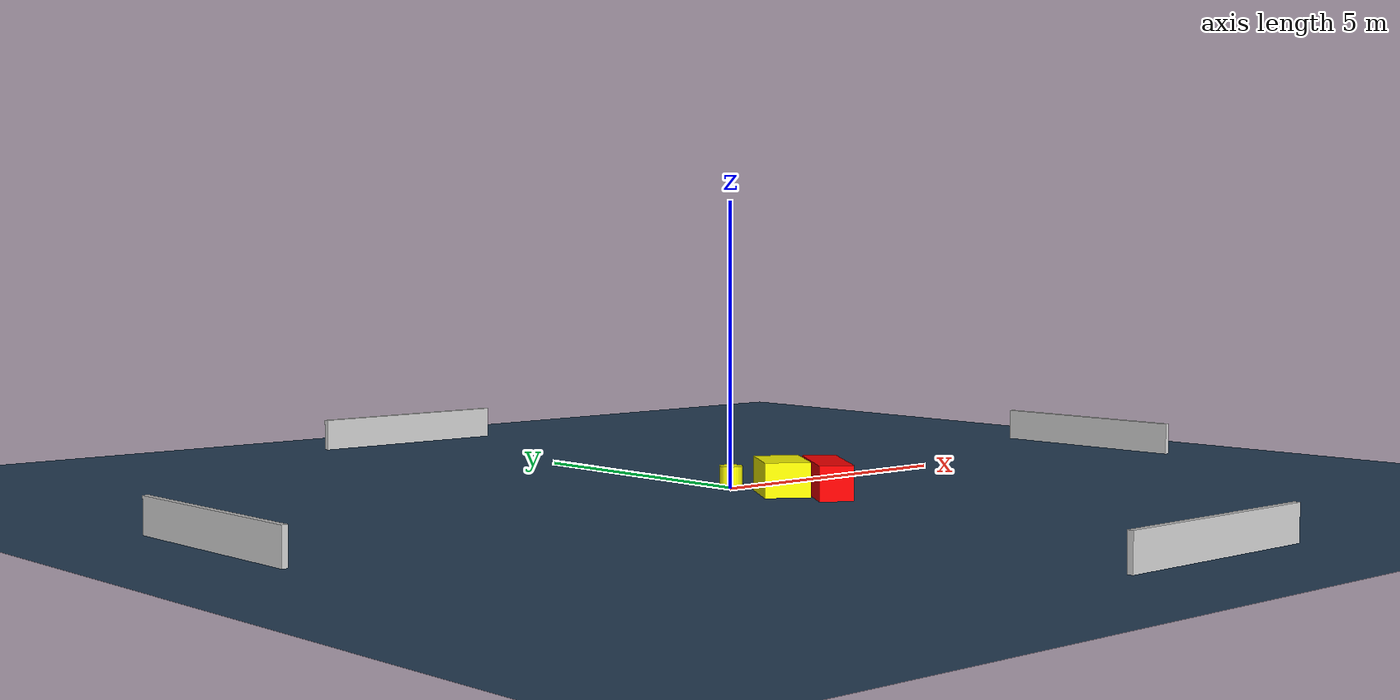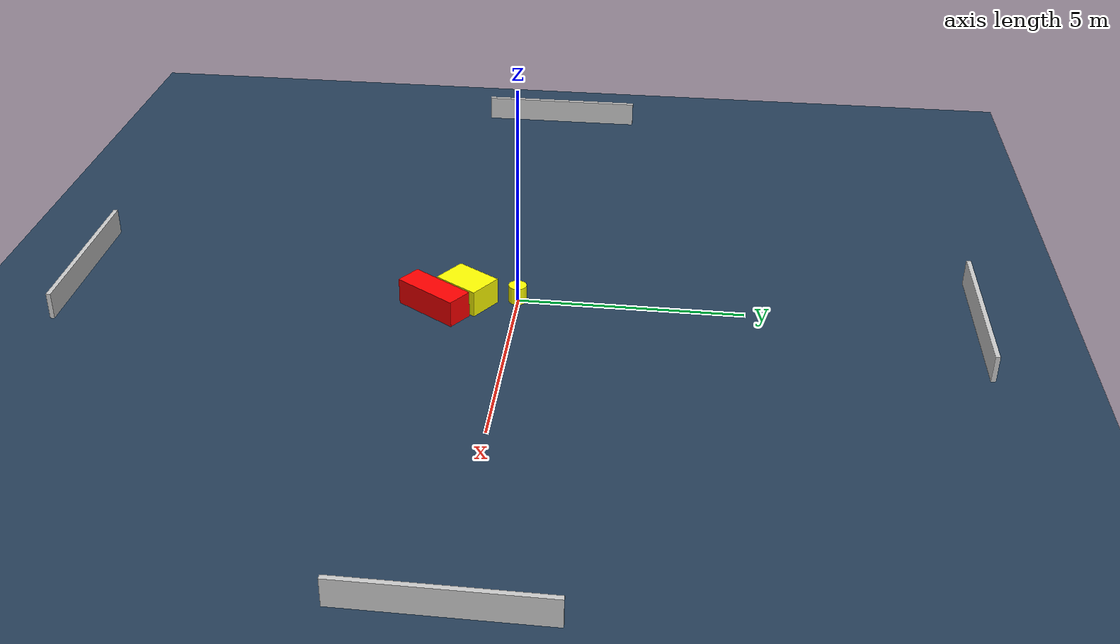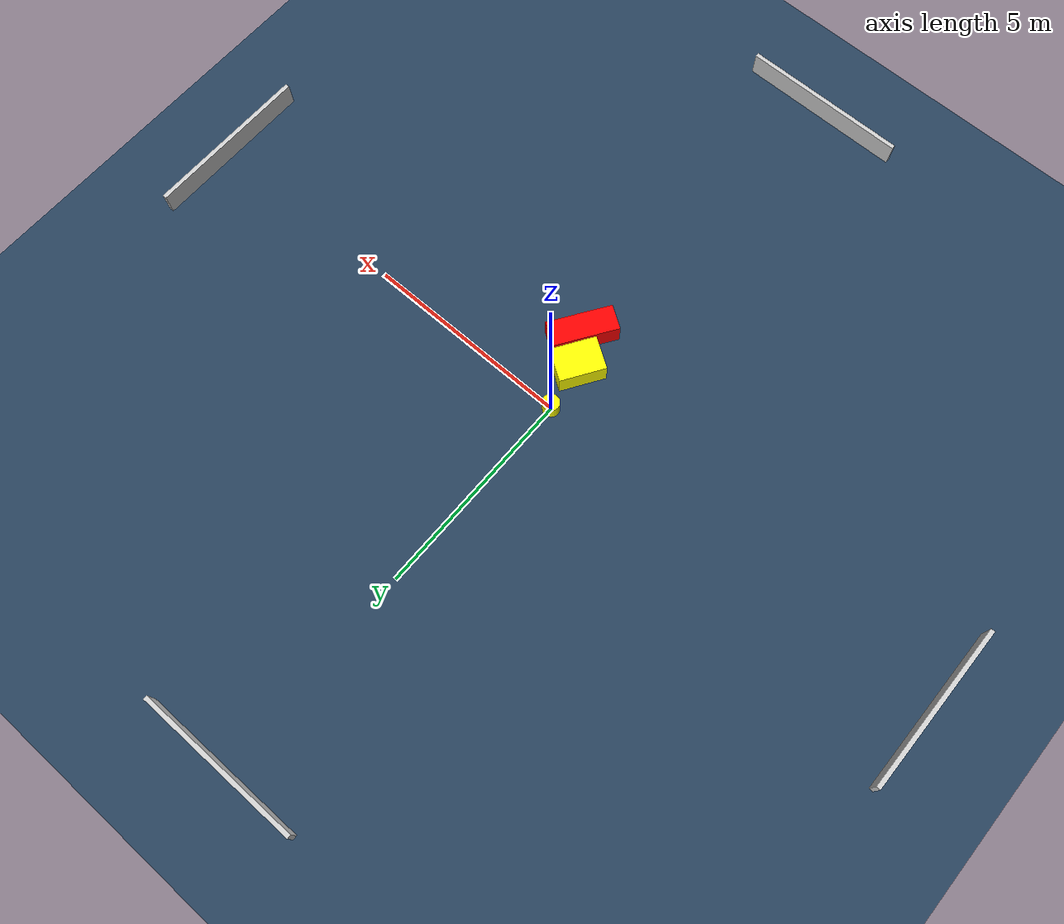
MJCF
<?xml version="1.0" ?>
<mujoco model="generated_environment">
  <option timestep="0.01" integrator="RK4" cone="elliptic"/>
  <default>
    <geom density="1"/>
  </default>
  <asset>
    <texture builtin="gradient" height="3072" name="skybox" rgb1="0.3 0.5 0.7" rgb2="0 0 0" type="skybox" width="512"/>
    <texture builtin="checker" height="300" name="groundplane" rgb1="0.2 0.3 0.4" rgb2="0.1 0.2 0.3" type="2d" width="300"/>
    <material name="groundplane" reflectance="0.2" texrepeat="5 5" texture="groundplane"/>
  </asset>
  <worldbody>
    <light dir="0 0 -1" directional="true" pos="0 0 1.5"/>
    <geom condim="3" friction="0.5 0.005 0.001" material="groundplane" name="floor" pos="0 0 0" size="0 0 0.05" type="plane"/>
    <body name="walls">
      <geom name="wall_1" condim="4" pos="-10.0 0.0 0.3" rgba="0.800000011920929 0.800000011920929 0.800000011920929 1.0" size="0.05 2.0 0.3" type="box"/>
      <geom name="wall_2" condim="4" pos="10.0 0.0 0.3" rgba="0.800000011920929 0.800000011920929 0.800000011920929 1.0" size="0.05 2.0 0.3" type="box"/>
      <geom name="wall_3" condim="4" pos="0.0 -10.0 0.3" rgba="0.800000011920929 0.800000011920929 0.800000011920929 1.0" size="2.0 0.05 0.3" type="box"/>
      <geom name="wall_4" condim="4" pos="0.0 10.0 0.3" rgba="0.800000011920929 0.800000011920929 0.800000011920929 1.0" size="2.0 0.05 0.3" type="box"/>
    </body>
    <body name="robot">
      <joint name="joint_x" type="slide" pos="0 0 0" axis="1 0 0"/>
      <joint name="joint_y" type="slide" pos="0 0 0" axis="0 1 0"/>
      <geom name="robot" type="cylinder" pos="0.0 0.0 0.2" size="0.2 0.2 0.0" mass="5.0" friction="1.0 0.005 0.0001" condim="4" rgba="1.0 1.0 0.0 1.0"/>
    </body>
    <body name="obstacle_1_movable">
      <geom name="obstacle_1_movable" condim="4" pos="0.16758153163615544 -1.1024166371826623 0.3" euler="0 0 236.94835340120073" friction="0.0 0.005 0.001" rgba="1.0 1.0 0.0 1.0" size="0.5436728680624616 0.3956126036821874 0.3" type="box" mass="0.1"/>
      <joint type="free"/>
    </body>
    <body name="obstacle_2_static">
      <geom name="obstacle_2_static" condim="4" pos="0.6002335296540307 -1.779037800454453 0.3" euler="0 0 236.21676832074525" friction="0.0 0.005 0.001" rgba="1.0 0.0 0.0 1.0" size="0.7777899518306142 0.2967975494621795 0.3" type="box"/>
    </body>
  </worldbody>
  <actuator>
    <motor name="actuator_x" joint="joint_x" gear="1" ctrlrange="-1 1"/>
    <motor name="actuator_y" joint="joint_y" gear="1" ctrlrange="-1 1"/>
  </actuator>
</mujoco>
